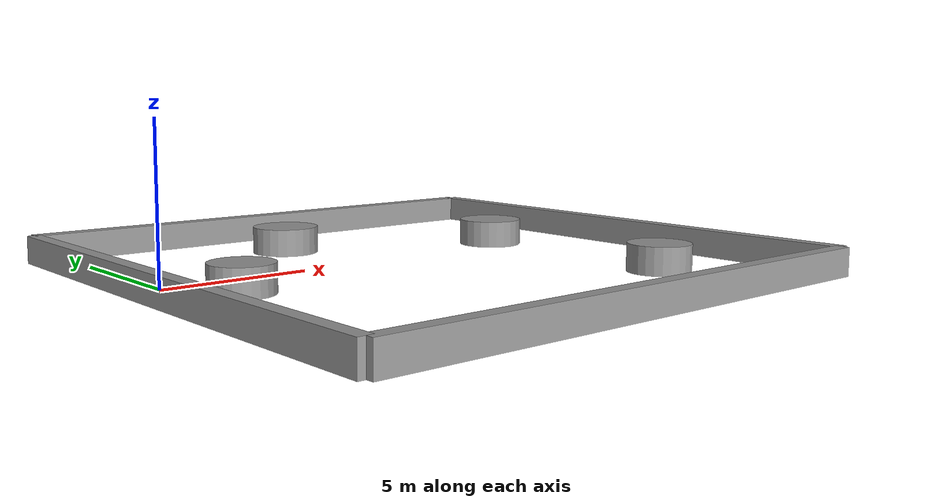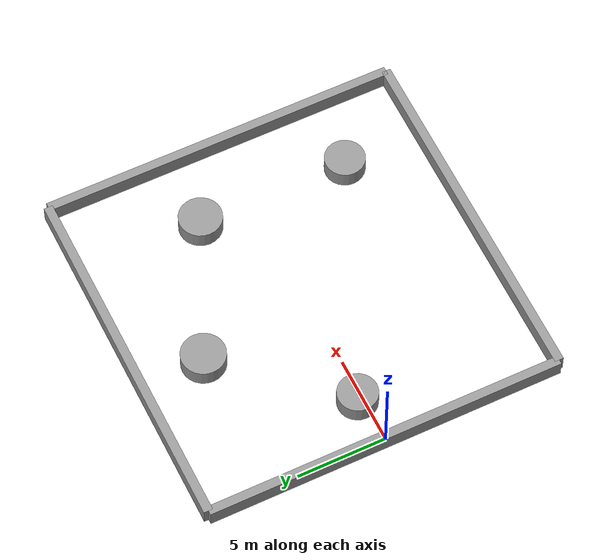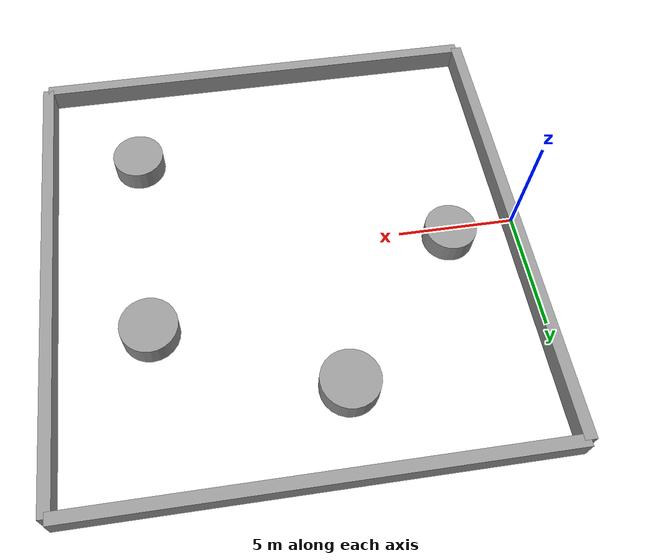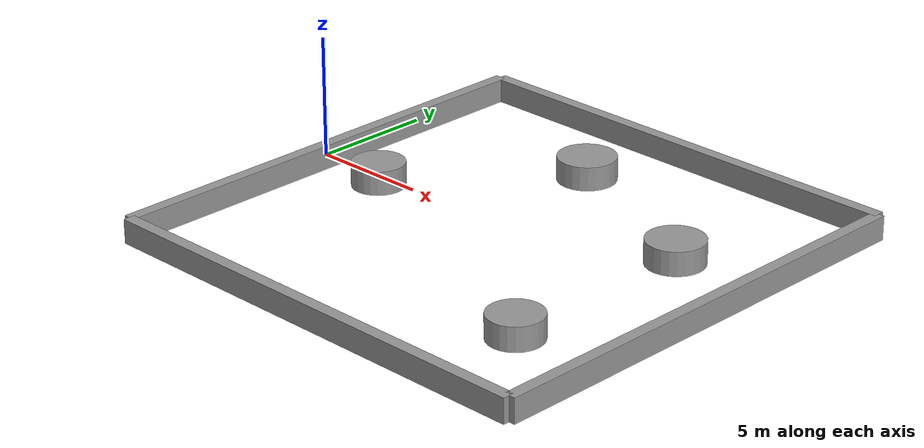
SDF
<?xml version='1.0'?>
<sdf version='1.6'>
  <model name='room_6'>
    <link name='link'>
      <pose frame=''>0 0 0 0 -0 0</pose>
      <inertial>
        <mass>20.0619</mass>
        <inertia>
          <ixx>674.551</ixx>
          <ixy>0</ixy>
          <ixz>0</ixz>
          <iyy>3.34366</iyy>
          <iyz>0</iyz>
          <izz>674.551</izz>
        </inertia>
        <pose frame=''>0 0 0 0 -0 0</pose>
      </inertial>
      <self_collide>0</self_collide>
      <kinematic>0</kinematic>
      <visual name='visual'>
        <geometry>
          <box>
            <size>0.5 20 1</size>
          </box>
        </geometry>
        <material>
          <script>
            <name>Gazebo/Grey</name>
            <uri>file://media/materials/scripts/gazebo.material</uri>
          </script>
          <ambient>0.3 0.3 0.3 1</ambient>
          <diffuse>0.7 0.7 0.7 1</diffuse>
          <specular>0.01 0.01 0.01 1</specular>
          <emissive>0 0 0 1</emissive>
        </material>
        <pose frame=''>0 0 0 0 -0 0</pose>
        <transparency>0</transparency>
        <cast_shadows>1</cast_shadows>
      </visual>
      <collision name='collision'>
        <laser_retro>0</laser_retro>
        <max_contacts>10</max_contacts>
        <pose frame=''>0 0 0 0 -0 0</pose>
        <geometry>
          <box>
            <size>0.5 20 1</size>
          </box>
        </geometry>
        <surface>
          <friction>
            <ode>
              <mu>1</mu>
              <mu2>1</mu2>
              <fdir1>0 0 0</fdir1>
              <slip1>0</slip1>
              <slip2>0</slip2>
            </ode>
            <torsional>
              <coefficient>1</coefficient>
              <patch_radius>0</patch_radius>
              <surface_radius>0</surface_radius>
              <use_patch_radius>1</use_patch_radius>
              <ode>
                <slip>0</slip>
              </ode>
            </torsional>
          </friction>
          <bounce>
            <restitution_coefficient>0</restitution_coefficient>
            <threshold>1e+06</threshold>
          </bounce>
          <contact>
            <collide_without_contact>0</collide_without_contact>
            <collide_without_contact_bitmask>1</collide_without_contact_bitmask>
            <collide_bitmask>1</collide_bitmask>
            <ode>
              <soft_cfm>0</soft_cfm>
              <soft_erp>0.2</soft_erp>
              <kp>1e+13</kp>
              <kd>1</kd>
              <max_vel>0.01</max_vel>
              <min_depth>0</min_depth>
            </ode>
            <bullet>
              <split_impulse>1</split_impulse>
              <split_impulse_penetration_threshold>-0.01</split_impulse_penetration_threshold>
              <soft_cfm>0</soft_cfm>
              <soft_erp>0.2</soft_erp>
              <kp>1e+13</kp>
              <kd>1</kd>
            </bullet>
          </contact>
        </surface>
      </collision>
    </link>
    <link name='link_0'>
      <pose frame=''>10 10 0 0 -0 0</pose>
      <inertial>
        <mass>20</mass>
        <inertia>
          <ixx>3.18262</ixx>
          <ixy>0</ixy>
          <ixz>0</ixz>
          <iyy>581.858</iyy>
          <iyz>0</iyz>
          <izz>581.858</izz>
        </inertia>
        <pose frame=''>0 0 0 0 -0 0</pose>
      </inertial>
      <self_collide>0</self_collide>
      <kinematic>0</kinematic>
      <visual name='visual'>
        <pose frame=''>0 0 0 0 -0 0</pose>
        <geometry>
          <box>
            <size>20 0.5 1</size>
          </box>
        </geometry>
        <material>
          <lighting>1</lighting>
          <script>
            <uri>file://media/materials/scripts/gazebo.material</uri>
            <name>Gazebo/Grey</name>
          </script>
          <ambient>0.3 0.3 0.3 1</ambient>
          <diffuse>0.7 0.7 0.7 1</diffuse>
          <specular>0.01 0.01 0.01 1</specular>
          <emissive>0 0 0 1</emissive>
        </material>
        <transparency>0</transparency>
        <cast_shadows>1</cast_shadows>
      </visual>
      <collision name='collision'>
        <laser_retro>0</laser_retro>
        <max_contacts>10</max_contacts>
        <pose frame=''>0 0 0 0 -0 0</pose>
        <geometry>
          <box>
            <size>20 0.5 1</size>
          </box>
        </geometry>
        <surface>
          <friction>
            <ode>
              <mu>1</mu>
              <mu2>1</mu2>
              <fdir1>0 0 0</fdir1>
              <slip1>0</slip1>
              <slip2>0</slip2>
            </ode>
            <torsional>
              <coefficient>1</coefficient>
              <patch_radius>0</patch_radius>
              <surface_radius>0</surface_radius>
              <use_patch_radius>1</use_patch_radius>
              <ode>
                <slip>0</slip>
              </ode>
            </torsional>
          </friction>
          <bounce>
            <restitution_coefficient>0</restitution_coefficient>
            <threshold>1e+06</threshold>
          </bounce>
          <contact>
            <collide_without_contact>0</collide_without_contact>
            <collide_without_contact_bitmask>1</collide_without_contact_bitmask>
            <collide_bitmask>1</collide_bitmask>
            <ode>
              <soft_cfm>0</soft_cfm>
              <soft_erp>0.2</soft_erp>
              <kp>1e+13</kp>
              <kd>1</kd>
              <max_vel>0.01</max_vel>
              <min_depth>0</min_depth>
            </ode>
            <bullet>
              <split_impulse>1</split_impulse>
              <split_impulse_penetration_threshold>-0.01</split_impulse_penetration_threshold>
              <soft_cfm>0</soft_cfm>
              <soft_erp>0.2</soft_erp>
              <kp>1e+13</kp>
              <kd>1</kd>
            </bullet>
          </contact>
        </surface>
      </collision>
    </link>
    <link name='link_1'>
      <pose frame=''>20 0 -0 0 -0 0</pose>
      <inertial>
        <mass>18.076</mass>
        <inertia>
          <ixx>493.69</ixx>
          <ixy>0</ixy>
          <ixz>0</ixz>
          <iyy>3.01267</iyy>
          <iyz>0</iyz>
          <izz>493.69</izz>
        </inertia>
        <pose frame=''>0 0 0 0 -0 0</pose>
      </inertial>
      <self_collide>0</self_collide>
      <kinematic>0</kinematic>
      <visual name='visual'>
        <pose frame=''>0 0 0 0 -0 0</pose>
        <geometry>
          <box>
            <size>0.5 20 1</size>
          </box>
        </geometry>
        <material>
          <lighting>1</lighting>
          <script>
            <uri>file://media/materials/scripts/gazebo.material</uri>
            <name>Gazebo/Grey</name>
          </script>
          <ambient>0.3 0.3 0.3 1</ambient>
          <diffuse>0.7 0.7 0.7 1</diffuse>
          <specular>0.01 0.01 0.01 1</specular>
          <emissive>0 0 0 1</emissive>
        </material>
        <transparency>0</transparency>
        <cast_shadows>1</cast_shadows>
      </visual>
      <collision name='collision'>
        <laser_retro>0</laser_retro>
        <max_contacts>10</max_contacts>
        <pose frame=''>0 0 0 0 -0 0</pose>
        <geometry>
          <box>
            <size>0.5 20 1</size>
          </box>
        </geometry>
        <surface>
          <friction>
            <ode>
              <mu>1</mu>
              <mu2>1</mu2>
              <fdir1>0 0 0</fdir1>
              <slip1>0</slip1>
              <slip2>0</slip2>
            </ode>
            <torsional>
              <coefficient>1</coefficient>
              <patch_radius>0</patch_radius>
              <surface_radius>0</surface_radius>
              <use_patch_radius>1</use_patch_radius>
              <ode>
                <slip>0</slip>
              </ode>
            </torsional>
          </friction>
          <bounce>
            <restitution_coefficient>0</restitution_coefficient>
            <threshold>1e+06</threshold>
          </bounce>
          <contact>
            <collide_without_contact>0</collide_without_contact>
            <collide_without_contact_bitmask>1</collide_without_contact_bitmask>
            <collide_bitmask>1</collide_bitmask>
            <ode>
              <soft_cfm>0</soft_cfm>
              <soft_erp>0.2</soft_erp>
              <kp>1e+13</kp>
              <kd>1</kd>
              <max_vel>0.01</max_vel>
              <min_depth>0</min_depth>
            </ode>
            <bullet>
              <split_impulse>1</split_impulse>
              <split_impulse_penetration_threshold>-0.01</split_impulse_penetration_threshold>
              <soft_cfm>0</soft_cfm>
              <soft_erp>0.2</soft_erp>
              <kp>1e+13</kp>
              <kd>1</kd>
            </bullet>
          </contact>
        </surface>
      </collision>
    </link>
    <link name='link_1_0'>
      <pose frame=''>15.9442 -5.51837 2.1e-05 0 -0 8.6e-05</pose>
      <inertial>
        <mass>5.01212</mass>
        <inertia>
          <ixx>1.98776</ixx>
          <ixy>0</ixy>
          <ixz>0</ixz>
          <iyy>1.98776</iyy>
          <iyz>0</iyz>
          <izz>3.14017</izz>
        </inertia>
        <pose frame=''>0 0 0 0 -0 0</pose>
      </inertial>
      <self_collide>0</self_collide>
      <kinematic>0</kinematic>
      <visual name='visual'>
        <pose frame=''>0 0 0 0 -0 0</pose>
        <geometry>
          <cylinder>
            <radius>1.11938</radius>
            <length>1</length>
          </cylinder>
        </geometry>
        <material>
          <lighting>1</lighting>
          <script>
            <uri>file://media/materials/scripts/gazebo.material</uri>
            <name>Gazebo/Grey</name>
          </script>
          <ambient>0.3 0.3 0.3 1</ambient>
          <diffuse>0.7 0.7 0.7 1</diffuse>
          <specular>0.01 0.01 0.01 1</specular>
          <emissive>0 0 0 1</emissive>
        </material>
        <transparency>0</transparency>
        <cast_shadows>1</cast_shadows>
      </visual>
      <collision name='collision'>
        <laser_retro>0</laser_retro>
        <max_contacts>10</max_contacts>
        <pose frame=''>0 0 0 0 -0 0</pose>
        <geometry>
          <cylinder>
            <radius>1.11938</radius>
            <length>1</length>
          </cylinder>
        </geometry>
        <surface>
          <friction>
            <ode>
              <mu>1</mu>
              <mu2>1</mu2>
              <fdir1>0 0 0</fdir1>
              <slip1>0</slip1>
              <slip2>0</slip2>
            </ode>
            <torsional>
              <coefficient>1</coefficient>
              <patch_radius>0</patch_radius>
              <surface_radius>0</surface_radius>
              <use_patch_radius>1</use_patch_radius>
              <ode>
                <slip>0</slip>
              </ode>
            </torsional>
          </friction>
          <bounce>
            <restitution_coefficient>0</restitution_coefficient>
            <threshold>1e+06</threshold>
          </bounce>
          <contact>
            <collide_without_contact>0</collide_without_contact>
            <collide_without_contact_bitmask>1</collide_without_contact_bitmask>
            <collide_bitmask>1</collide_bitmask>
            <ode>
              <soft_cfm>0</soft_cfm>
              <soft_erp>0.2</soft_erp>
              <kp>1e+13</kp>
              <kd>1</kd>
              <max_vel>0.01</max_vel>
              <min_depth>0</min_depth>
            </ode>
            <bullet>
              <split_impulse>1</split_impulse>
              <split_impulse_penetration_threshold>-0.01</split_impulse_penetration_threshold>
              <soft_cfm>0</soft_cfm>
              <soft_erp>0.2</soft_erp>
              <kp>1e+13</kp>
              <kd>1</kd>
            </bullet>
          </contact>
        </surface>
      </collision>
    </link>
    <link name='link_2'>
      <pose frame=''>10 -10 0 0 -0 0</pose>
      <inertial>
        <mass>18.8281</mass>
        <inertia>
          <ixx>3.13802</ixx>
          <ixy>0</ixy>
          <ixz>0</ixz>
          <iyy>557.78</iyy>
          <iyz>0</iyz>
          <izz>557.78</izz>
        </inertia>
        <pose frame=''>0 0 0 0 -0 0</pose>
      </inertial>
      <self_collide>0</self_collide>
      <kinematic>0</kinematic>
      <visual name='visual'>
        <pose frame=''>0 0 0 0 -0 0</pose>
        <geometry>
          <box>
            <size>20 0.5 1</size>
          </box>
        </geometry>
        <material>
          <lighting>1</lighting>
          <script>
            <uri>file://media/materials/scripts/gazebo.material</uri>
            <name>Gazebo/Grey</name>
          </script>
          <ambient>0.3 0.3 0.3 1</ambient>
          <diffuse>0.7 0.7 0.7 1</diffuse>
          <specular>0.01 0.01 0.01 1</specular>
          <emissive>0 0 0 1</emissive>
        </material>
        <transparency>0</transparency>
        <cast_shadows>1</cast_shadows>
      </visual>
      <collision name='collision'>
        <laser_retro>0</laser_retro>
        <max_contacts>10</max_contacts>
        <pose frame=''>0 0 0 0 -0 0</pose>
        <geometry>
          <box>
            <size>20 0.5 1</size>
          </box>
        </geometry>
        <surface>
          <friction>
            <ode>
              <mu>1</mu>
              <mu2>1</mu2>
              <fdir1>0 0 0</fdir1>
              <slip1>0</slip1>
              <slip2>0</slip2>
            </ode>
            <torsional>
              <coefficient>1</coefficient>
              <patch_radius>0</patch_radius>
              <surface_radius>0</surface_radius>
              <use_patch_radius>1</use_patch_radius>
              <ode>
                <slip>0</slip>
              </ode>
            </torsional>
          </friction>
          <bounce>
            <restitution_coefficient>0</restitution_coefficient>
            <threshold>1e+06</threshold>
          </bounce>
          <contact>
            <collide_without_contact>0</collide_without_contact>
            <collide_without_contact_bitmask>1</collide_without_contact_bitmask>
            <collide_bitmask>1</collide_bitmask>
            <ode>
              <soft_cfm>0</soft_cfm>
              <soft_erp>0.2</soft_erp>
              <kp>1e+13</kp>
              <kd>1</kd>
              <max_vel>0.01</max_vel>
              <min_depth>0</min_depth>
            </ode>
            <bullet>
              <split_impulse>1</split_impulse>
              <split_impulse_penetration_threshold>-0.01</split_impulse_penetration_threshold>
              <soft_cfm>0</soft_cfm>
              <soft_erp>0.2</soft_erp>
              <kp>1e+13</kp>
              <kd>1</kd>
            </bullet>
          </contact>
        </surface>
      </collision>
    </link>
    <link name='link_2_0'>
      <pose frame=''>15.9493 2.99522 1.8e-05 0 -0 8.6e-05</pose>
      <inertial>
        <mass>5.76613</mass>
        <inertia>
          <ixx>2.55853</ixx>
          <ixy>0</ixy>
          <ixz>0</ixz>
          <iyy>2.55853</iyy>
          <iyz>0</iyz>
          <izz>4.15604</izz>
        </inertia>
        <pose frame=''>0 0 0 0 -0 0</pose>
      </inertial>
      <self_collide>0</self_collide>
      <kinematic>0</kinematic>
      <visual name='visual'>
        <pose frame=''>0 0 0 0 -0 0</pose>
        <geometry>
          <cylinder>
            <radius>1.20063</radius>
            <length>1</length>
          </cylinder>
        </geometry>
        <material>
          <lighting>1</lighting>
          <script>
            <uri>file://media/materials/scripts/gazebo.material</uri>
            <name>Gazebo/Grey</name>
          </script>
          <ambient>0.3 0.3 0.3 1</ambient>
          <diffuse>0.7 0.7 0.7 1</diffuse>
          <specular>0.01 0.01 0.01 1</specular>
          <emissive>0 0 0 1</emissive>
        </material>
        <transparency>0</transparency>
        <cast_shadows>1</cast_shadows>
      </visual>
      <collision name='collision'>
        <laser_retro>0</laser_retro>
        <max_contacts>10</max_contacts>
        <pose frame=''>0 0 0 0 -0 0</pose>
        <geometry>
          <cylinder>
            <radius>1.20063</radius>
            <length>1</length>
          </cylinder>
        </geometry>
        <surface>
          <friction>
            <ode>
              <mu>1</mu>
              <mu2>1</mu2>
              <fdir1>0 0 0</fdir1>
              <slip1>0</slip1>
              <slip2>0</slip2>
            </ode>
            <torsional>
              <coefficient>1</coefficient>
              <patch_radius>0</patch_radius>
              <surface_radius>0</surface_radius>
              <use_patch_radius>1</use_patch_radius>
              <ode>
                <slip>0</slip>
              </ode>
            </torsional>
          </friction>
          <bounce>
            <restitution_coefficient>0</restitution_coefficient>
            <threshold>1e+06</threshold>
          </bounce>
          <contact>
            <collide_without_contact>0</collide_without_contact>
            <collide_without_contact_bitmask>1</collide_without_contact_bitmask>
            <collide_bitmask>1</collide_bitmask>
            <ode>
              <soft_cfm>0</soft_cfm>
              <soft_erp>0.2</soft_erp>
              <kp>1e+13</kp>
              <kd>1</kd>
              <max_vel>0.01</max_vel>
              <min_depth>0</min_depth>
            </ode>
            <bullet>
              <split_impulse>1</split_impulse>
              <split_impulse_penetration_threshold>-0.01</split_impulse_penetration_threshold>
              <soft_cfm>0</soft_cfm>
              <soft_erp>0.2</soft_erp>
              <kp>1e+13</kp>
              <kd>1</kd>
            </bullet>
          </contact>
        </surface>
      </collision>
    </link>
    <link name='link_4'>
      <pose frame=''>8.35436 6.37425 1.1e-05 0 -0 8.6e-05</pose>
      <inertial>
        <mass>6.01285</mass>
        <inertia>
          <ixx>2.76072</ixx>
          <ixy>0</ixy>
          <ixz>0</ixz>
          <iyy>2.76072</iyy>
          <iyz>0</iyz>
          <izz>4.51929</izz>
        </inertia>
        <pose frame=''>0 0 0 0 -0 0</pose>
      </inertial>
      <self_collide>0</self_collide>
      <kinematic>0</kinematic>
      <visual name='visual'>
        <pose frame=''>0 0 0 0 -0 0</pose>
        <geometry>
          <cylinder>
            <radius>1.22606</radius>
            <length>1</length>
          </cylinder>
        </geometry>
        <material>
          <lighting>1</lighting>
          <script>
            <uri>file://media/materials/scripts/gazebo.material</uri>
            <name>Gazebo/Grey</name>
          </script>
          <ambient>0.3 0.3 0.3 1</ambient>
          <diffuse>0.7 0.7 0.7 1</diffuse>
          <specular>0.01 0.01 0.01 1</specular>
          <emissive>0 0 0 1</emissive>
        </material>
        <transparency>0</transparency>
        <cast_shadows>1</cast_shadows>
      </visual>
      <collision name='collision'>
        <laser_retro>0</laser_retro>
        <max_contacts>10</max_contacts>
        <pose frame=''>0 0 0 0 -0 0</pose>
        <geometry>
          <cylinder>
            <radius>1.22606</radius>
            <length>1</length>
          </cylinder>
        </geometry>
        <surface>
          <friction>
            <ode>
              <mu>1</mu>
              <mu2>1</mu2>
              <fdir1>0 0 0</fdir1>
              <slip1>0</slip1>
              <slip2>0</slip2>
            </ode>
            <torsional>
              <coefficient>1</coefficient>
              <patch_radius>0</patch_radius>
              <surface_radius>0</surface_radius>
              <use_patch_radius>1</use_patch_radius>
              <ode>
                <slip>0</slip>
              </ode>
            </torsional>
          </friction>
          <bounce>
            <restitution_coefficient>0</restitution_coefficient>
            <threshold>1e+06</threshold>
          </bounce>
          <contact>
            <collide_without_contact>0</collide_without_contact>
            <collide_without_contact_bitmask>1</collide_without_contact_bitmask>
            <collide_bitmask>1</collide_bitmask>
            <ode>
              <soft_cfm>0</soft_cfm>
              <soft_erp>0.2</soft_erp>
              <kp>1e+13</kp>
              <kd>1</kd>
              <max_vel>0.01</max_vel>
              <min_depth>0</min_depth>
            </ode>
            <bullet>
              <split_impulse>1</split_impulse>
              <split_impulse_penetration_threshold>-0.01</split_impulse_penetration_threshold>
              <soft_cfm>0</soft_cfm>
              <soft_erp>0.2</soft_erp>
              <kp>1e+13</kp>
              <kd>1</kd>
            </bullet>
          </contact>
        </surface>
      </collision>
    </link>
    <link name='link_5'>
      <pose frame=''>2.83748 0.204281 1.3e-05 0 -0 8.6e-05</pose>
      <inertial>
        <mass>4.86461</mass>
        <inertia>
          <ixx>1.88441</ixx>
          <ixy>0</ixy>
          <ixz>0</ixz>
          <iyy>1.88441</iyy>
          <iyz>0</iyz>
          <izz>2.95806</izz>
        </inertia>
        <pose frame=''>0 0 0 0 -0 0</pose>
      </inertial>
      <self_collide>0</self_collide>
      <kinematic>0</kinematic>
      <visual name='visual'>
        <pose frame=''>0 0 0 0 -0 0</pose>
        <geometry>
          <cylinder>
            <radius>1.10279</radius>
            <length>1</length>
          </cylinder>
        </geometry>
        <material>
          <lighting>1</lighting>
          <script>
            <uri>file://media/materials/scripts/gazebo.material</uri>
            <name>Gazebo/Grey</name>
          </script>
          <ambient>0.3 0.3 0.3 1</ambient>
          <diffuse>0.7 0.7 0.7 1</diffuse>
          <specular>0.01 0.01 0.01 1</specular>
          <emissive>0 0 0 1</emissive>
        </material>
        <transparency>0</transparency>
        <cast_shadows>1</cast_shadows>
      </visual>
      <collision name='collision'>
        <laser_retro>0</laser_retro>
        <max_contacts>10</max_contacts>
        <pose frame=''>0 0 0 0 -0 0</pose>
        <geometry>
          <cylinder>
            <radius>1.10279</radius>
            <length>1</length>
          </cylinder>
        </geometry>
        <surface>
          <friction>
            <ode>
              <mu>1</mu>
              <mu2>1</mu2>
              <fdir1>0 0 0</fdir1>
              <slip1>0</slip1>
              <slip2>0</slip2>
            </ode>
            <torsional>
              <coefficient>1</coefficient>
              <patch_radius>0</patch_radius>
              <surface_radius>0</surface_radius>
              <use_patch_radius>1</use_patch_radius>
              <ode>
                <slip>0</slip>
              </ode>
            </torsional>
          </friction>
          <bounce>
            <restitution_coefficient>0</restitution_coefficient>
            <threshold>1e+06</threshold>
          </bounce>
          <contact>
            <collide_without_contact>0</collide_without_contact>
            <collide_without_contact_bitmask>1</collide_without_contact_bitmask>
            <collide_bitmask>1</collide_bitmask>
            <ode>
              <soft_cfm>0</soft_cfm>
              <soft_erp>0.2</soft_erp>
              <kp>1e+13</kp>
              <kd>1</kd>
              <max_vel>0.01</max_vel>
              <min_depth>0</min_depth>
            </ode>
            <bullet>
              <split_impulse>1</split_impulse>
              <split_impulse_penetration_threshold>-0.01</split_impulse_penetration_threshold>
              <soft_cfm>0</soft_cfm>
              <soft_erp>0.2</soft_erp>
              <kp>1e+13</kp>
              <kd>1</kd>
            </bullet>
          </contact>
        </surface>
      </collision>
    </link>
    <joint name='link_0_JOINT_1' type='screw'>
      <parent>link_0</parent>
      <child>link_1</child>
      <pose frame=''>0 0 0 0 -0 0</pose>
      <axis>
        <xyz>1 0 0</xyz>
        <use_parent_model_frame>0</use_parent_model_frame>
        <limit>
          <lower>-1.79769e+308</lower>
          <upper>1.79769e+308</upper>
          <effort>-1</effort>
          <velocity>-1</velocity>
        </limit>
        <dynamics>
          <spring_reference>0</spring_reference>
          <spring_stiffness>0</spring_stiffness>
          <damping>0</damping>
          <friction>0</friction>
        </dynamics>
      </axis>
      <physics>
        <ode>
          <limit>
            <cfm>0</cfm>
            <erp>0.2</erp>
          </limit>
          <suspension>
            <cfm>0</cfm>
            <erp>0.2</erp>
          </suspension>
        </ode>
      </physics>
    </joint>
    <joint name='link_0_JOINT_2' type='screw'>
      <parent>link_0</parent>
      <child>link_2</child>
      <pose frame=''>0 0 0 0 -0 0</pose>
      <axis>
        <xyz>1 0 0</xyz>
        <use_parent_model_frame>0</use_parent_model_frame>
        <limit>
          <lower>-1.79769e+308</lower>
          <upper>1.79769e+308</upper>
          <effort>-1</effort>
          <velocity>-1</velocity>
        </limit>
        <dynamics>
          <spring_reference>0</spring_reference>
          <spring_stiffness>0</spring_stiffness>
          <damping>0</damping>
          <friction>0</friction>
        </dynamics>
      </axis>
      <physics>
        <ode>
          <limit>
            <cfm>0</cfm>
            <erp>0.2</erp>
          </limit>
          <suspension>
            <cfm>0</cfm>
            <erp>0.2</erp>
          </suspension>
        </ode>
      </physics>
    </joint>
    <joint name='link_0_JOINT_6' type='fixed'>
      <parent>link_0</parent>
      <child>link_5</child>
      <pose frame=''>0 0 0 0 -0 0</pose>
      <physics>
        <ode>
          <limit>
            <cfm>0</cfm>
            <erp>0.2</erp>
          </limit>
          <suspension>
            <cfm>0</cfm>
            <erp>0.2</erp>
          </suspension>
        </ode>
      </physics>
    </joint>
    <joint name='link_1_0_JOINT_1' type='fixed'>
      <parent>link_1_0</parent>
      <child>link_1</child>
      <pose frame=''>0 0 0 0 -0 0</pose>
      <physics>
        <ode>
          <limit>
            <cfm>0</cfm>
            <erp>0.2</erp>
          </limit>
          <suspension>
            <cfm>0</cfm>
            <erp>0.2</erp>
          </suspension>
        </ode>
      </physics>
    </joint>
    <joint name='link_2_0_JOINT_2' type='fixed'>
      <parent>link_2_0</parent>
      <child>link_1_0</child>
      <pose frame=''>0 0 0 0 -0 0</pose>
      <physics>
        <ode>
          <limit>
            <cfm>0</cfm>
            <erp>0.2</erp>
          </limit>
          <suspension>
            <cfm>0</cfm>
            <erp>0.2</erp>
          </suspension>
        </ode>
      </physics>
    </joint>
    <joint name='link_4_JOINT_3' type='fixed'>
      <parent>link_4</parent>
      <child>link_2_0</child>
      <pose frame=''>0 0 0 0 -0 0</pose>
      <physics>
        <ode>
          <limit>
            <cfm>0</cfm>
            <erp>0.2</erp>
          </limit>
          <suspension>
            <cfm>0</cfm>
            <erp>0.2</erp>
          </suspension>
        </ode>
      </physics>
    </joint>
    <joint name='link_4_JOINT_4' type='fixed'>
      <parent>link_4</parent>
      <child>link_1</child>
      <pose frame=''>0 0 0 0 -0 0</pose>
      <physics>
        <ode>
          <limit>
            <cfm>0</cfm>
            <erp>0.2</erp>
          </limit>
          <suspension>
            <cfm>0</cfm>
            <erp>0.2</erp>
          </suspension>
        </ode>
      </physics>
    </joint>
    <joint name='link_4_JOINT_7' type='fixed'>
      <parent>link_4</parent>
      <child>link_5</child>
      <pose frame=''>0 0 0 0 -0 0</pose>
      <physics>
        <ode>
          <limit>
            <cfm>0</cfm>
            <erp>0.2</erp>
          </limit>
          <suspension>
            <cfm>0</cfm>
            <erp>0.2</erp>
          </suspension>
        </ode>
      </physics>
    </joint>
    <joint name='link_JOINT_0' type='screw'>
      <parent>link</parent>
      <child>link_0</child>
      <pose frame=''>0 0 0 0 -0 0</pose>
      <axis>
        <xyz>1 0 0</xyz>
        <use_parent_model_frame>0</use_parent_model_frame>
        <limit>
          <lower>-1.79769e+308</lower>
          <upper>1.79769e+308</upper>
          <effort>-1</effort>
          <velocity>-1</velocity>
        </limit>
        <dynamics>
          <spring_reference>0</spring_reference>
          <spring_stiffness>0</spring_stiffness>
          <damping>0</damping>
          <friction>0</friction>
        </dynamics>
      </axis>
      <physics>
        <ode>
          <limit>
            <cfm>0</cfm>
            <erp>0.2</erp>
          </limit>
          <suspension>
            <cfm>0</cfm>
            <erp>0.2</erp>
          </suspension>
        </ode>
      </physics>
    </joint>
    <static>0</static>
    <allow_auto_disable>1</allow_auto_disable>
  </model>
</sdf>
